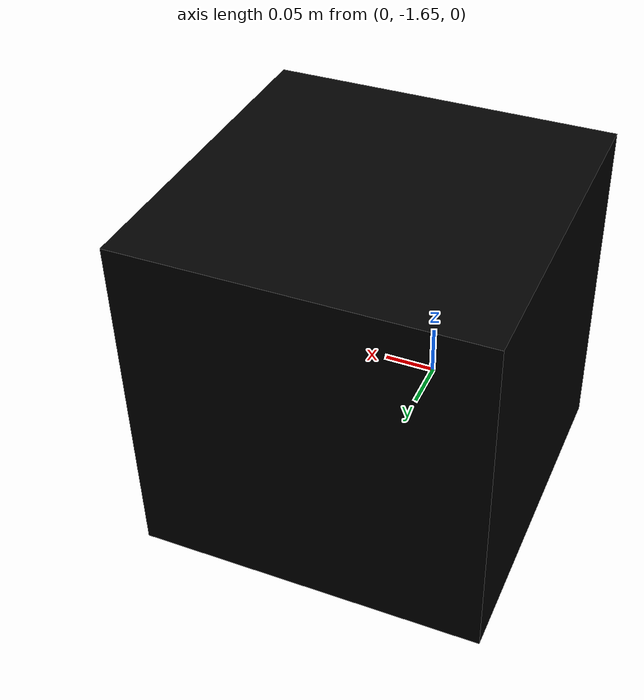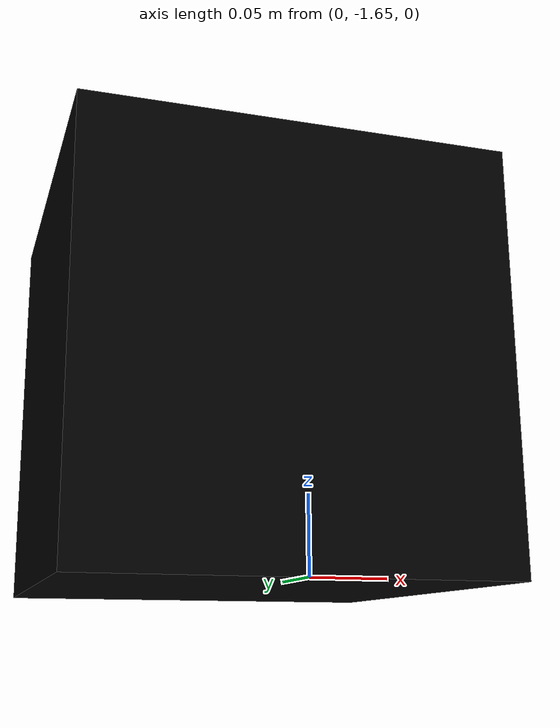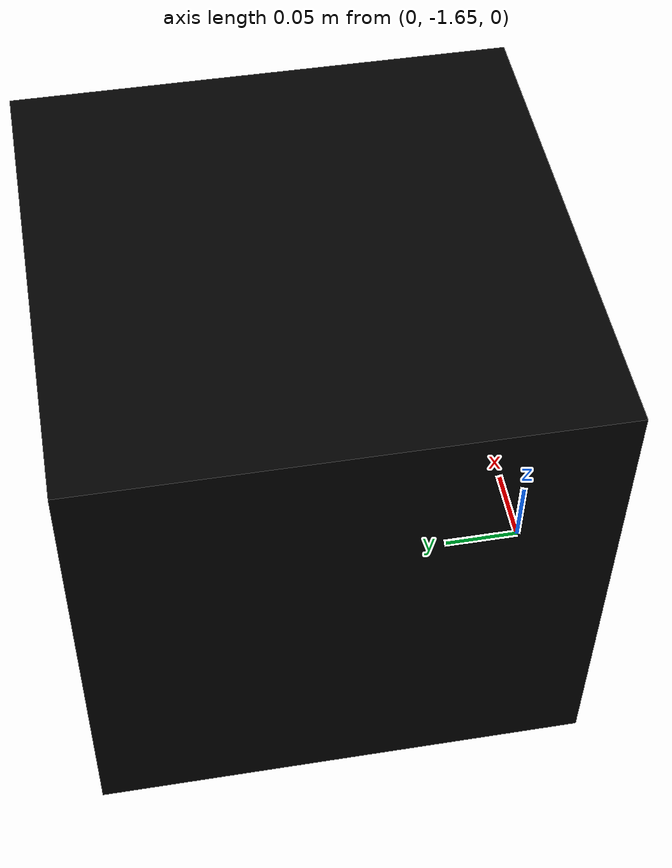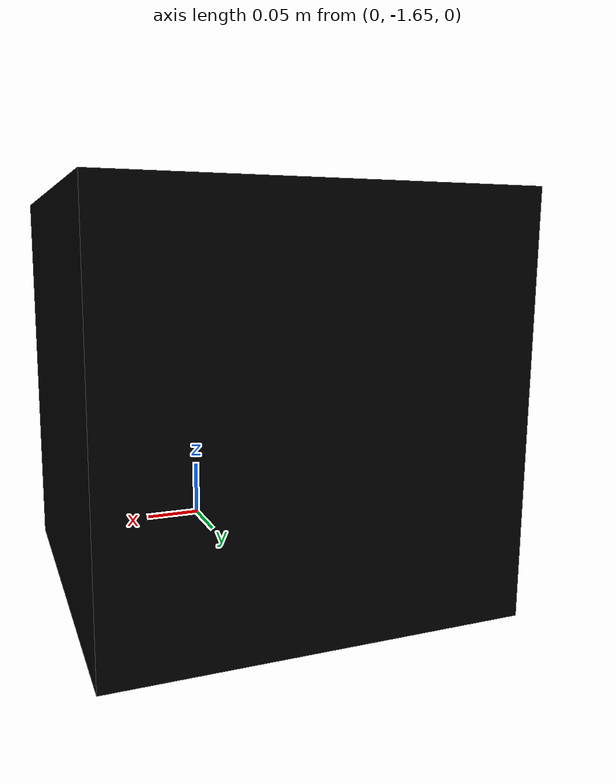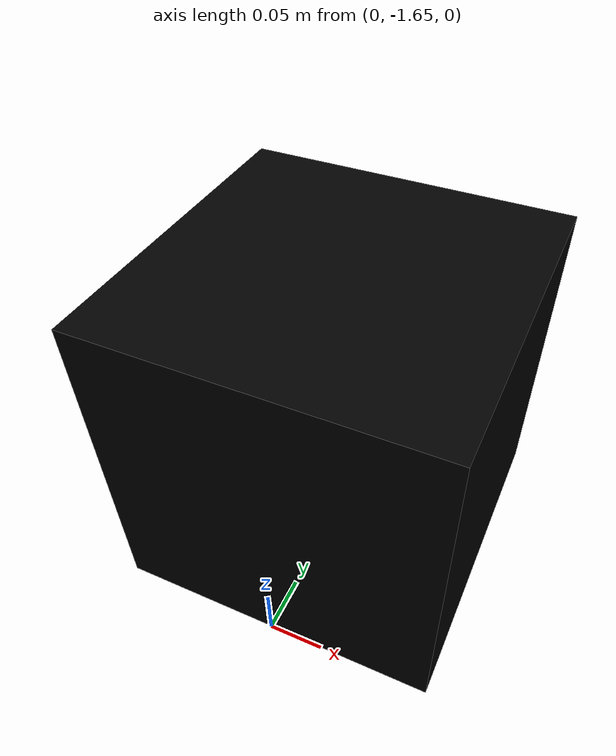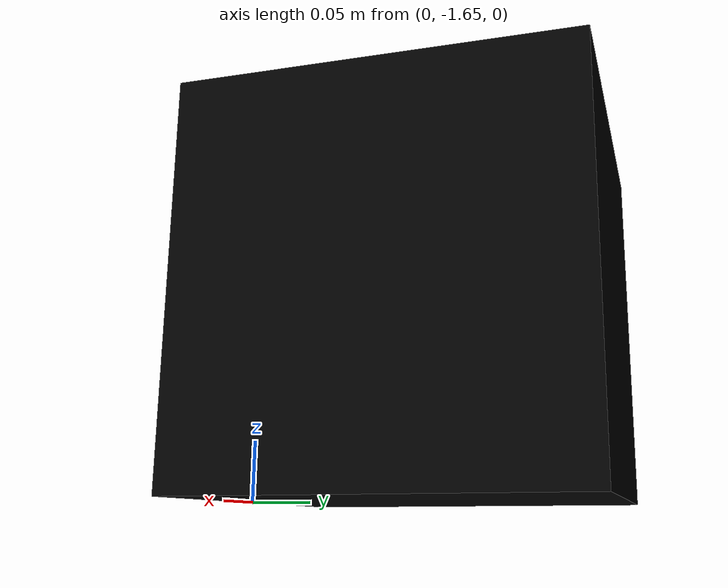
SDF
<?xml version='1.0'?>
<sdf version='1.4'>
  <model name="AruCo_Block_2">
    <static>true</static>
    <link name='chassis'>
            <pose>0 -1.5 0.15 0 0 0</pose>

            <collision name='collision'>
              <geometry>
                <box>
                  <size>.3 .3 .3</size>
                </box>
              </geometry>
            </collision>

            <visual name='visual'>
              <geometry>
                <box>
                  <size>.3 .3 .3</size>
                </box>
              </geometry>
              <material>
                <script>
                <uri>model://AruCo_Block_2/materials/scripts</uri>
                <uri>model://AruCo_Block_2/materials/textures</uri>
                <name>block2</name>
                </script>
                <ambient>0 0 0 1</ambient>
                <diffuse>0 0 0 1</diffuse>
                <specular>0 0 0 0</specular>
                <emissive>1 1 1 1</emissive>
              </material>
            </visual>
          </link>
  </model>
</sdf>
